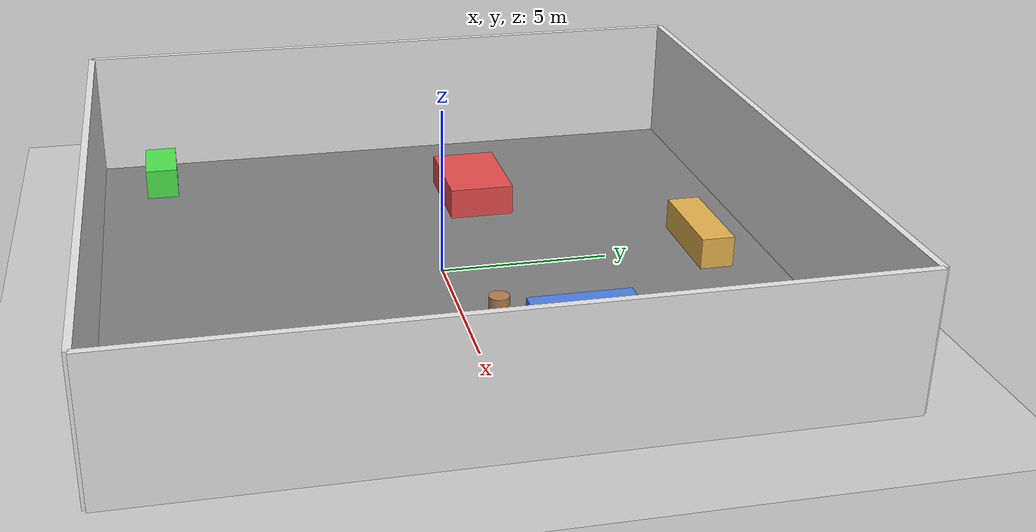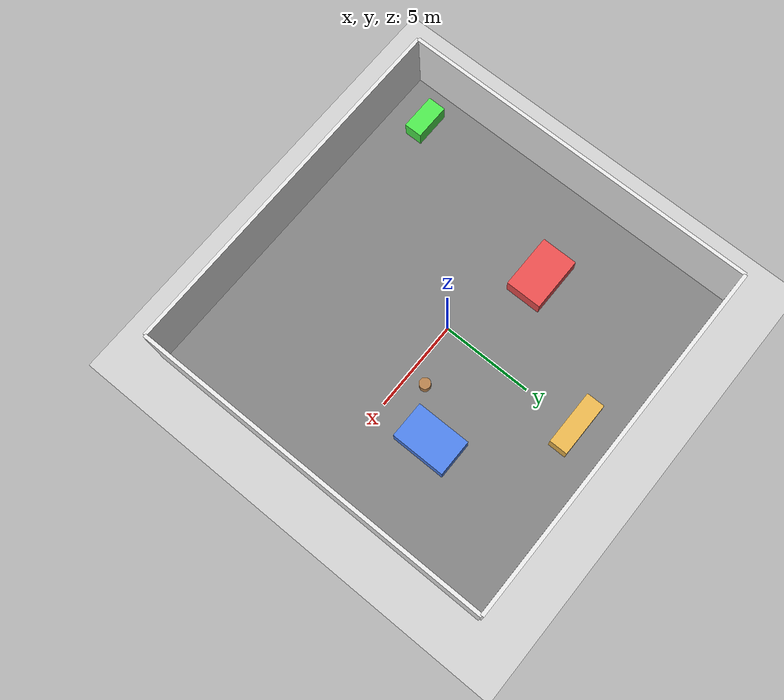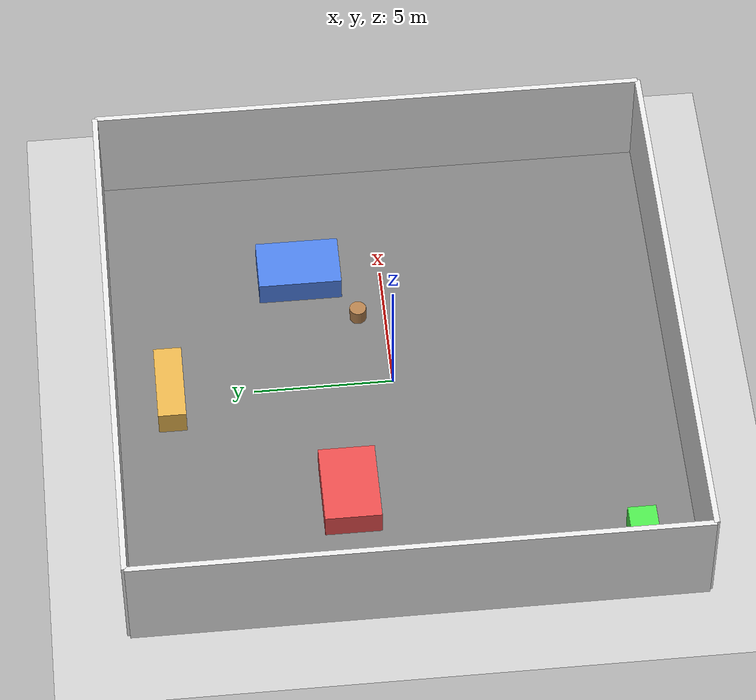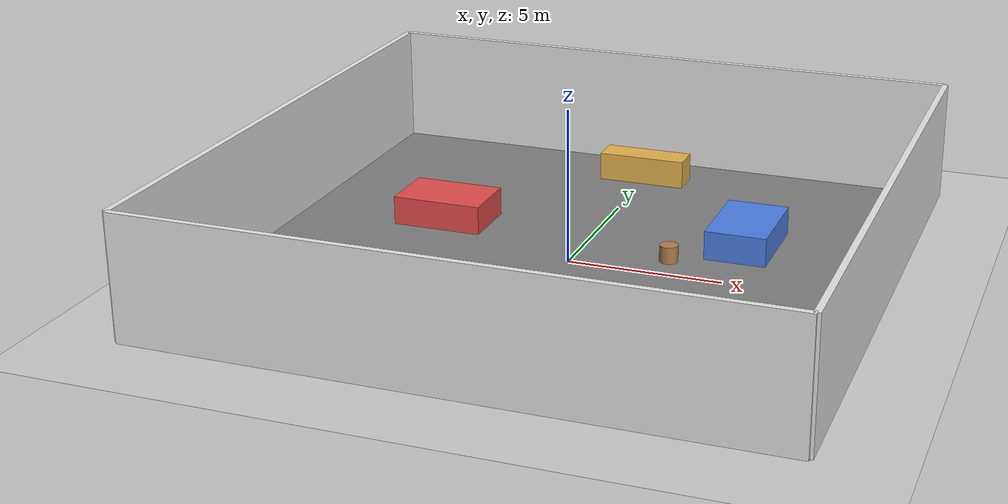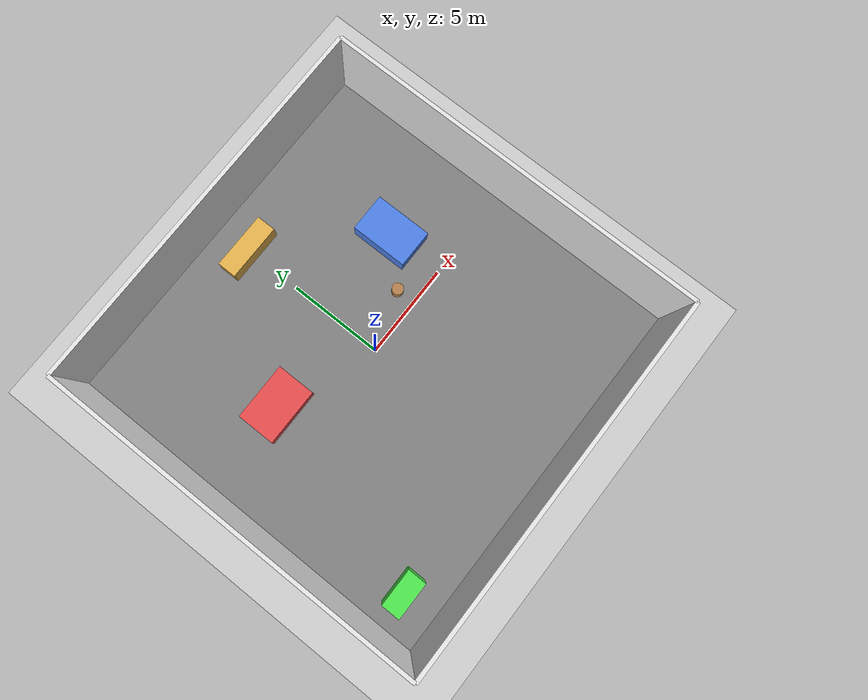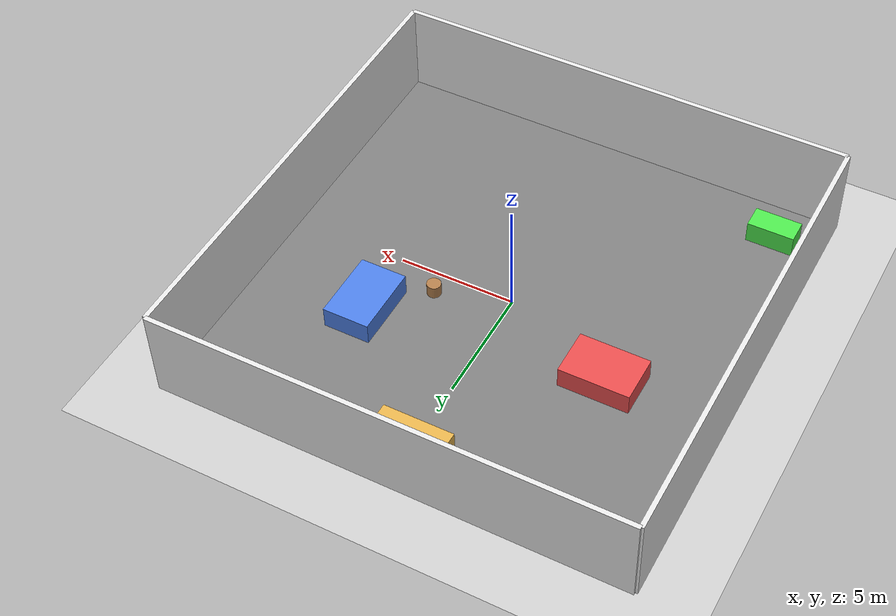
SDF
<?xml version="1.0" ?>
<!-- 展览厅仿真环境 -->
<sdf version="1.6">
  <world name="exhibition_hall">

    <!-- 环境光照 -->
    <include>
      <uri>model://sun</uri>
    </include>

    <!-- 地面 -->
    <include>
      <uri>model://ground_plane</uri>
    </include>

    <!-- 主展厅结构 -->
    <model name="main_hall">
      <static>true</static>

      <!-- 地面 -->
      <link name="floor">
        <collision name="collision">
          <geometry>
            <box>
              <size>20 20 0.1</size>
            </box>
          </geometry>
        </collision>
        <visual name="visual">
          <geometry>
            <box>
              <size>20 20 0.1</size>
            </box>
          </geometry>
          <material>
            <ambient>0.3 0.3 0.3 1</ambient>
            <diffuse>0.5 0.5 0.5 1</diffuse>
            <specular>0.1 0.1 0.1 1</specular>
          </material>
        </visual>
      </link>

      <!-- 墙壁 -->
      <link name="wall_north">
        <pose>0 10 2 0 0 0</pose>
        <collision name="collision">
          <geometry>
            <box>
              <size>20 0.2 4</size>
            </box>
          </geometry>
        </collision>
        <visual name="visual">
          <geometry>
            <box>
              <size>20 0.2 4</size>
            </box>
          </geometry>
          <material>
            <ambient>0.8 0.8 0.8 1</ambient>
            <diffuse>0.9 0.9 0.9 1</diffuse>
          </material>
        </visual>
      </link>

      <link name="wall_south">
        <pose>0 -10 2 0 0 0</pose>
        <collision name="collision">
          <geometry>
            <box>
              <size>20 0.2 4</size>
            </box>
          </geometry>
        </collision>
        <visual name="visual">
          <geometry>
            <box>
              <size>20 0.2 4</size>
            </box>
          </geometry>
          <material>
            <ambient>0.8 0.8 0.8 1</ambient>
            <diffuse>0.9 0.9 0.9 1</diffuse>
          </material>
        </visual>
      </link>

      <link name="wall_east">
        <pose>10 0 2 0 0 0</pose>
        <collision name="collision">
          <geometry>
            <box>
              <size>0.2 20 4</size>
            </box>
          </geometry>
        </collision>
        <visual name="visual">
          <geometry>
            <box>
              <size>0.2 20 4</size>
            </box>
          </geometry>
          <material>
            <ambient>0.8 0.8 0.8 1</ambient>
            <diffuse>0.9 0.9 0.9 1</diffuse>
          </material>
        </visual>
      </link>

      <link name="wall_west">
        <pose>-10 0 2 0 0 0</pose>
        <collision name="collision">
          <geometry>
            <box>
              <size>0.2 20 4</size>
            </box>
          </geometry>
        </collision>
        <visual name="visual">
          <geometry>
            <box>
              <size>0.2 20 4</size>
            </box>
          </geometry>
          <material>
            <ambient>0.8 0.8 0.8 1</ambient>
            <diffuse>0.9 0.9 0.9 1</diffuse>
          </material>
        </visual>
      </link>
    </model>

    <!-- 展台1 -->
    <model name="exhibition_stand_1">
      <pose>5 3 0.5 0 0 0</pose>
      <static>true</static>
      <link name="link">
        <collision name="collision">
          <geometry>
            <box>
              <size>2 3 1</size>
            </box>
          </geometry>
        </collision>
        <visual name="visual">
          <geometry>
            <box>
              <size>2 3 1</size>
            </box>
          </geometry>
          <material>
            <ambient>0.2 0.4 0.8 1</ambient>
            <diffuse>0.3 0.5 0.9 1</diffuse>
            <specular>0.1 0.2 0.5 1</specular>
          </material>
        </visual>
      </link>
    </model>

    <!-- 展台2 -->
    <model name="exhibition_stand_2">
      <pose>-5 2 0.5 0 0 0</pose>
      <static>true</static>
      <link name="link">
        <collision name="collision">
          <geometry>
            <box>
              <size>3 2 1</size>
            </box>
          </geometry>
        </collision>
        <visual name="visual">
          <geometry>
            <box>
              <size>3 2 1</size>
            </box>
          </geometry>
          <material>
            <ambient>0.8 0.2 0.2 1</ambient>
            <diffuse>0.9 0.3 0.3 1</diffuse>
            <specular>0.5 0.1 0.1 1</specular>
          </material>
        </visual>
      </link>
    </model>

    <!-- 接待台 -->
    <model name="reception_desk">
      <pose>0 8 0.5 3.14 0 0</pose>
      <static>true</static>
      <link name="link">
        <collision name="collision">
          <geometry>
            <box>
              <size>3 1 1</size>
            </box>
          </geometry>
        </collision>
        <visual name="visual">
          <geometry>
            <box>
              <size>3 1 1</size>
            </box>
          </geometry>
          <material>
            <ambient>0.8 0.6 0.2 1</ambient>
            <diffuse>0.9 0.7 0.3 1</diffuse>
            <specular>0.4 0.3 0.1 1</specular>
          </material>
        </visual>
      </link>
    </model>

    <!-- 障碍物（可移动的椅子） -->
    <model name="obstacle_chair_1">
      <pose>3 1 0.3 0 0 0</pose>
      <static>false</static>  <!-- 设置为false，可以被推动 -->
      <link name="link">
        <collision name="collision">
          <geometry>
            <cylinder>
              <radius>0.3</radius>
              <length>0.6</length>
            </cylinder>
          </geometry>
        </collision>
        <visual name="visual">
          <geometry>
            <cylinder>
              <radius>0.3</radius>
              <length>0.6</length>
            </cylinder>
          </geometry>
          <material>
            <ambient>0.6 0.4 0.2 1</ambient>
            <diffuse>0.7 0.5 0.3 1</diffuse>
          </material>
        </visual>
      </link>
    </model>

    <!-- 充电站 -->
    <model name="charging_station">
      <pose>-8 -8 0.5 0 0 1.57</pose>
      <static>true</static>
      <link name="link">
        <collision name="collision">
          <geometry>
            <box>
              <size>1 2 1</size>
            </box>
          </geometry>
        </collision>
        <visual name="visual">
          <geometry>
            <box>
              <size>1 2 1</size>
            </box>
          </geometry>
          <material>
            <ambient>0.2 0.8 0.2 1</ambient>
            <diffuse>0.3 0.9 0.3 1</diffuse>
            <specular>0.1 0.4 0.1 1</specular>
          </material>
        </visual>
      </link>
    </model>

    <!-- 灯光 -->
    <light name="spotlight_1" type="spot">
      <pose>0 0 5 0 0 0</pose>
      <diffuse>0.8 0.8 0.8 1</diffuse>
      <specular>0.2 0.2 0.2 1</specular>
      <attenuation>
        <range>20</range>
        <constant>0.8</constant>
        <linear>0.01</linear>
        <quadratic>0.001</quadratic>
      </attenuation>
      <direction>0 0 -1</direction>
      <spot>
        <inner_angle>0.6</inner_angle>
        <outer_angle>1.0</outer_angle>
        <falloff>1.0</falloff>
      </spot>
    </light>

  </world>
</sdf>
